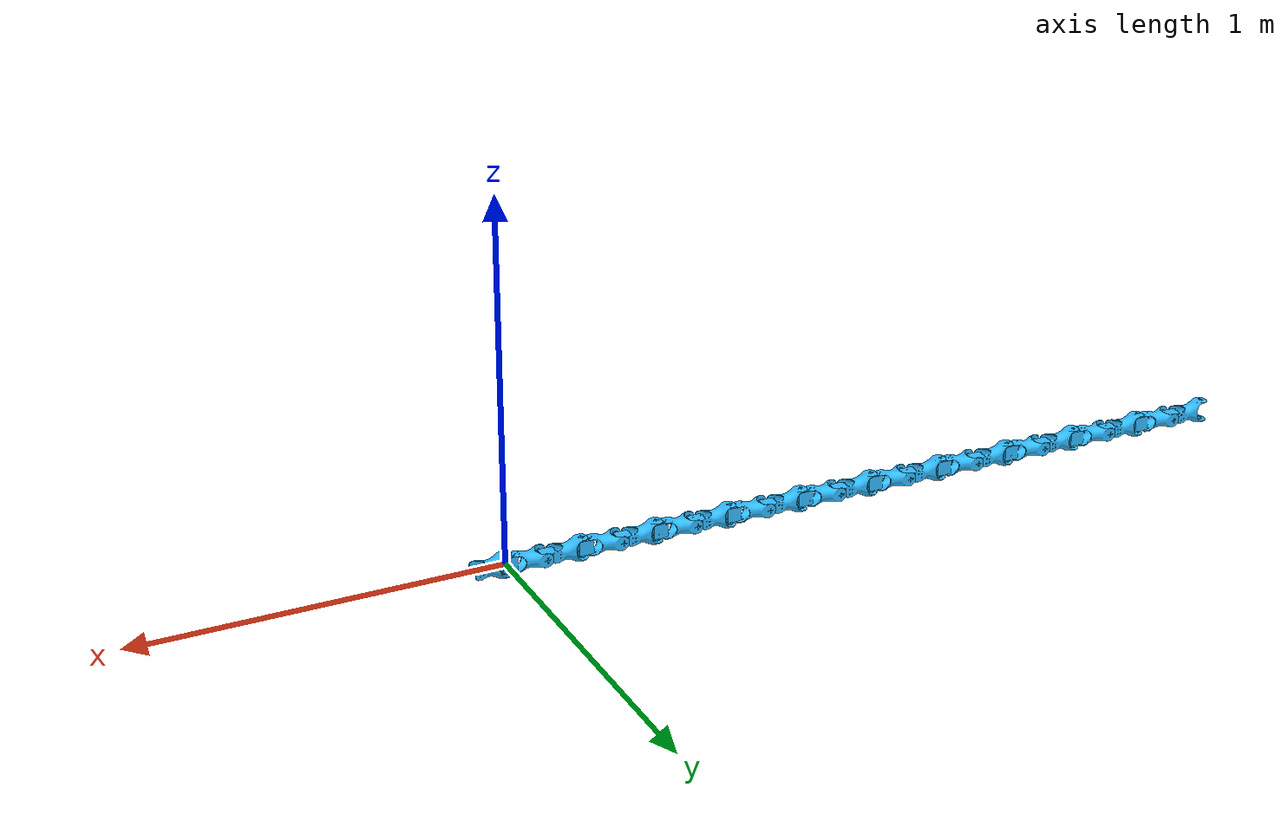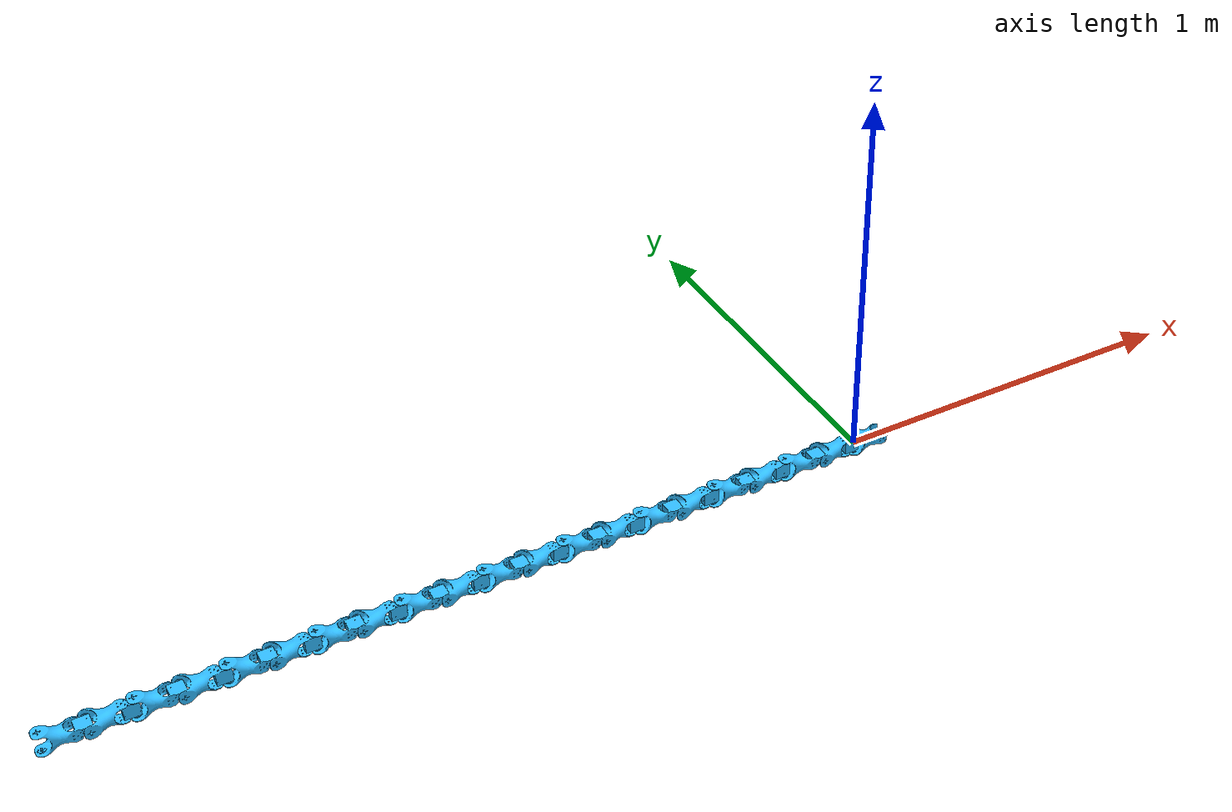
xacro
<?xml version="1.0"?>
<robot name="snake_simulate" xmlns:xacro="http://www.ros.org/wiki/xacro">

    <xacro:property name="PI" value="3.1415926535897931" />

    <xacro:include filename="$(find snake_simulate)/snake_without_wheel_xacro/snake_without_wheel_head.xacro" />
    <xacro:include filename="$(find snake_simulate)/snake_without_wheel_xacro/snake_without_wheel_orthogonal_joint.xacro" />

    <snake_without_wheel_head ID1="1" ID2="2" />
    <snake_without_wheel_orthogonal_joint ID1="3" ID2="4" />
    <snake_without_wheel_orthogonal_joint ID1="5" ID2="6" />
    <snake_without_wheel_orthogonal_joint ID1="7" ID2="8" />
    <snake_without_wheel_orthogonal_joint ID1="9" ID2="10" />
    <snake_without_wheel_orthogonal_joint ID1="11" ID2="12" />
    <snake_without_wheel_orthogonal_joint ID1="13" ID2="14" />
    <snake_without_wheel_orthogonal_joint ID1="15" ID2="16" />
    <snake_without_wheel_orthogonal_joint ID1="17" ID2="18" />
    <snake_without_wheel_orthogonal_joint ID1="19" ID2="20" />

    <gazebo>
        <plugin filename="libgazebo_ros_control.so" name="ros_control">
            <robotNamespace>/snake_simulate</robotNamespace>
            <robotSimType>gazebo_ros_control/DefaultRobotHWSim</robotSimType>
            <legacyModeNS>true</legacyModeNS>
        </plugin>
    </gazebo>
</robot>

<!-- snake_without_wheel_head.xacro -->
<robot name="snake_simulate" xmlns:xacro="http://www.ros.org/wiki/xacro">
    <xacro:macro name="snake_without_wheel_head" params="ID1 ID2">
        <link name="dummy_link">
        </link>
        <link
            name="base_link">
            <inertial>
                <origin
                    xyz="0.035391 1.5116E-05 2E-07"
                    rpy="0 0 0" />
                <mass
                    value="0.10849" />
                <inertia
                    ixx="6.2343E-05"
                    ixy="-8.9347E-08"
                    ixz="-2.2641E-10"
                    iyy="0.00010475"
                    iyz="-1.7709E-09"
                    izz="9.276E-05" />
            </inertial>
            <visual>
                <origin
                    xyz="0 0 0"
                    rpy="0 0 0" />
                <geometry>
                    <mesh
                        filename="package://snake_simulate/meshes/snake_without_wheel_base_link.STL" />
                </geometry>
                <material
                    name="">
                    <color
                        rgba="0.18431 0.73333 1 1" />
                </material>
            </visual>
            <collision>
                <origin
                    xyz="0 0 0"
                    rpy="0 0 0" />
                <geometry>
                    <mesh
                        filename="package://snake_simulate/meshes/snake_without_wheel_base_link.STL" />
                </geometry>
            </collision>
        </link>
        <joint name="dummy_joint" type="fixed">
            <parent link="dummy_link"/>
            <child link="base_link"/>
        </joint>
        <link
            name="Link_${ID1}">
            <inertial>
                <origin
                    xyz="-0.028507 -0.00015484 -3.6726E-05"
                    rpy="0 0 0" />
                <mass
                    value="0.3569" />
                <inertia
                    ixx="0.00010484"
                    ixy="-4.4703E-09"
                    ixz="1.6891E-07"
                    iyy="0.0001602"
                    iyz="2.9787E-10"
                    izz="0.00014581" />
            </inertial>
            <visual>
                <origin
                    xyz="0 0 0"
                    rpy="0 0 0" />
                <geometry>
                    <mesh
                        filename="package://snake_simulate/meshes/snake_without_wheel_Link_1.STL" />
                </geometry>
                <material
                    name="">
                    <color
                        rgba="0.18431 0.73333 1 1" />
                </material>
            </visual>
            <collision>
                <origin
                    xyz="0 0 0"
                    rpy="0 0 0" />
                <geometry>
                    <mesh
                        filename="package://snake_simulate/meshes/snake_without_wheel_Link_1.STL" />
                </geometry>
            </collision>
        </link>
        <joint
            name="Joint_${ID1}"
            type="revolute">
            <origin
                xyz="0 0 0"
                rpy="0 0 0" />
            <parent
                link="base_link" />
            <child
                link="Link_${ID1}" />
            <axis
                xyz="0 0 -1" />
            <limit
                lower="-1.5"
                upper="1.5"
                effort="1000"
                velocity="50" />
        </joint>
        <link
            name="Link_${ID2}">
            <inertial>
                <origin
                    xyz="-0.028507 -0.00015484 -3.6726E-05"
                    rpy="0 0 0" />
                <mass
                    value="0.3569" />
                <inertia
                    ixx="0.00010484"
                    ixy="-4.4703E-09"
                    ixz="1.6891E-07"
                    iyy="0.0001602"
                    iyz="2.9787E-10"
                    izz="0.00014581" />
            </inertial>
            <visual>
                <origin
                    xyz="0 0 0"
                    rpy="0 0 0" />
                <geometry>
                    <mesh
                        filename="package://snake_simulate/meshes/snake_without_wheel_Link_2.STL" />
                </geometry>
                <material
                    name="">
                    <color
                        rgba="0.18431 0.73333 1 1" />
                </material>
            </visual>
            <collision>
                <origin
                    xyz="0 0 0"
                    rpy="0 0 0" />
                <geometry>
                    <mesh
                        filename="package://snake_simulate/meshes/snake_without_wheel_Link_2.STL" />
                </geometry>
            </collision>
        </link>
        <joint
            name="Joint_${ID2}"
            type="revolute">
            <origin
                xyz="-0.1059 -0.00015556 0"
                rpy="1.5708 0 0" />
            <parent
                link="Link_${ID1}" />
            <child
                link="Link_${ID2}" />
            <axis
                xyz="0 0 -1" />
            <limit
                lower="-1.5"
                upper="1.5"
                effort="1000"
                velocity="50" />
        </joint>
        <gazebo reference="base_link">
            <material>Gazebo/Blue</material>
            <implicitSpringDamper>1</implicitSpringDamper>
            <kp>1000000.0</kp>
            <kd>1.0</kd>
            <mu1>0.5</mu1>
            <mu2>0.5</mu2>
            <minDepth>0.001</minDepth>
        </gazebo>
        <gazebo reference="Link_${ID1}">
            <material>Gazebo/Orange</material>
            <implicitSpringDamper>1</implicitSpringDamper>
            <kp>1000000.0</kp>
            <kd>1.0</kd>
            <mu1>0.5</mu1>
            <mu2>0.5</mu2>
            <minDepth>0.001</minDepth>
        </gazebo>
        <transmission name="Tran_${ID1}">
            <type>transmission_interface/SimpleTransmission</type>
            <joint name="Joint_${ID1}">
            <hardwareInterface>hardware_interface/EffortJointInterface</hardwareInterface>
            </joint>
            <actuator name="Motor_${ID1}">
            <mechanicalReduction>1</mechanicalReduction>
            <hardwareInterface>hardware_interface/EffortJointInterface</hardwareInterface>
            </actuator>
        </transmission>
        <gazebo reference="Link_${ID2}">
            <material>Gazebo/Blue</material>
            <implicitSpringDamper>1</implicitSpringDamper>
            <kp>1000000.0</kp>
            <kd>1.0</kd>
            <mu1>0.5</mu1>
            <mu2>0.5</mu2>
            <minDepth>0.001</minDepth>
        </gazebo>
        <transmission name="Tran_${ID2}">
            <type>transmission_interface/SimpleTransmission</type>
            <joint name="Joint_${ID2}">
            <hardwareInterface>hardware_interface/EffortJointInterface</hardwareInterface>
            </joint>
            <actuator name="Motor_${ID2}">
            <mechanicalReduction>1</mechanicalReduction>
            <hardwareInterface>hardware_interface/EffortJointInterface</hardwareInterface>
            </actuator>
        </transmission>
    </xacro:macro>
</robot>

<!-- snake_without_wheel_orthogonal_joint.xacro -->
<robot name="snake_simulate" xmlns:xacro="http://www.ros.org/wiki/xacro">
    <xacro:macro name="snake_without_wheel_orthogonal_joint" params="ID1 ID2">
        <link
            name="Link_${ID1}">
            <inertial>
                <origin
                    xyz="-0.028507 -0.00015484 -3.6726E-05"
                    rpy="0 0 0" />
                <mass
                    value="0.3569" />
                <inertia
                    ixx="0.00010484"
                    ixy="-4.4703E-09"
                    ixz="1.6891E-07"
                    iyy="0.0001602"
                    iyz="2.9787E-10"
                    izz="0.00014581" />
            </inertial>
            <visual>
                <origin
                    xyz="0 0 0"
                    rpy="0 0 0" />
                <geometry>
                    <mesh
                        filename="package://snake_simulate/meshes/snake_without_wheel_Link_1.STL" />
                </geometry>
                <material
                    name="">
                    <color
                        rgba="0.18431 0.73333 1 1" />
                </material>
            </visual>
            <collision>
                <origin
                    xyz="0 0 0"
                    rpy="0 0 0" />
                <geometry>
                    <mesh
                        filename="package://snake_simulate/meshes/snake_without_wheel_Link_1.STL" />
                </geometry>
            </collision>
        </link>
        <joint
            name="Joint_${ID1}"
            type="revolute">
            <origin
                xyz="-0.1059 -0.00015556 0"
                rpy="-1.5708 0 0" />
            <parent
                link="Link_${ID1-1}" />
            <child
                link="Link_${ID1}" />
            <axis
                xyz="0 0 -1" />
            <limit
                lower="-1.5"
                upper="1.5"
                effort="1000"
                velocity="50" />
        </joint>
        <link
            name="Link_${ID2}">
            <inertial>
                <origin
                    xyz="-0.028507 -0.00015484 -3.6726E-05"
                    rpy="0 0 0" />
                <mass
                    value="0.3569" />
                <inertia
                    ixx="0.00010484"
                    ixy="-4.4703E-09"
                    ixz="1.6891E-07"
                    iyy="0.0001602"
                    iyz="2.9787E-10"
                    izz="0.00014581" />
            </inertial>
            <visual>
                <origin
                    xyz="0 0 0"
                    rpy="0 0 0" />
                <geometry>
                    <mesh
                        filename="package://snake_simulate/meshes/snake_without_wheel_Link_2.STL" />
                </geometry>
                <material
                    name="">
                    <color
                        rgba="0.18431 0.73333 1 1" />
                </material>
            </visual>
            <collision>
                <origin
                    xyz="0 0 0"
                    rpy="0 0 0" />
                <geometry>
                    <mesh
                        filename="package://snake_simulate/meshes/snake_without_wheel_Link_2.STL" />
                </geometry>
            </collision>
        </link>
        <joint
            name="Joint_${ID2}"
            type="revolute">
            <origin
                xyz="-0.1059 -0.00015556 0"
                rpy="1.5708 0 0" />
            <parent
                link="Link_${ID1}" />
            <child
                link="Link_${ID2}" />
            <axis
                xyz="0 0 -1" />
            <limit
                lower="-1.5"
                upper="1.5"
                effort="1000"
                velocity="50" />
        </joint>
        <gazebo reference="Link_${ID1}">
            <material>Gazebo/Orange</material>
            <implicitSpringDamper>1</implicitSpringDamper>
            <kp>1000000.0</kp>
            <kd>1.0</kd>
            <mu1>0.5</mu1>
            <mu2>0.5</mu2>
            <minDepth>0.001</minDepth>
        </gazebo>
        <transmission name="Tran_${ID1}">
            <type>transmission_interface/SimpleTransmission</type>
            <joint name="Joint_${ID1}">
            <hardwareInterface>hardware_interface/EffortJointInterface</hardwareInterface>
            </joint>
            <actuator name="Motor_${ID1}">
            <mechanicalReduction>1</mechanicalReduction>
            <hardwareInterface>hardware_interface/EffortJointInterface</hardwareInterface>
            </actuator>
        </transmission>
        <gazebo reference="Link_${ID2}">
            <material>Gazebo/Blue</material>
            <implicitSpringDamper>1</implicitSpringDamper>
            <kp>1000000.0</kp>
            <kd>1.0</kd>
            <mu1>0.5</mu1>
            <mu2>0.5</mu2>
            <minDepth>0.001</minDepth>
        </gazebo>
        <transmission name="Tran_${ID2}">
            <type>transmission_interface/SimpleTransmission</type>
            <joint name="Joint_${ID2}">
            <hardwareInterface>hardware_interface/EffortJointInterface</hardwareInterface>
            </joint>
            <actuator name="Motor_${ID2}">
            <mechanicalReduction>1</mechanicalReduction>
            <hardwareInterface>hardware_interface/EffortJointInterface</hardwareInterface>
            </actuator>
        </transmission>
    </xacro:macro>
</robot>
